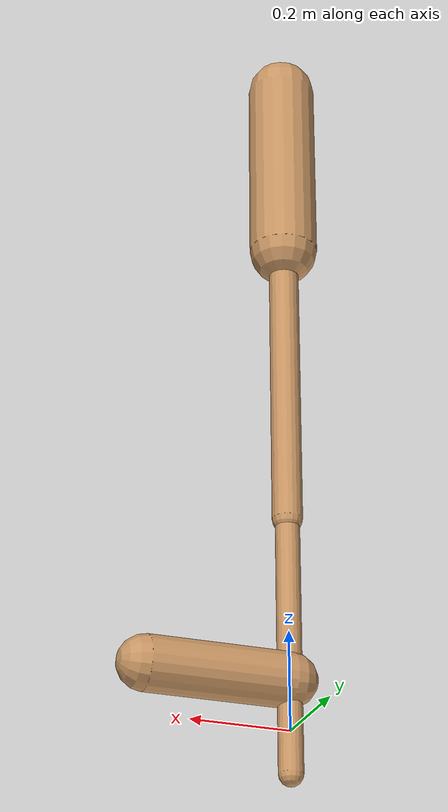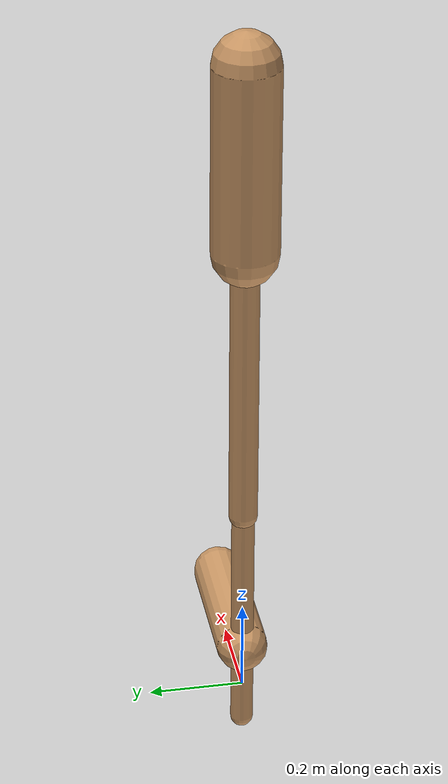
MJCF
<mujoco model="walker2d">
  <compiler angle="degree" coordinate="global" inertiafromgeom="true" />
  <default>
    <joint armature="0.01" damping=".1" limited="true" />
    <geom conaffinity="0" condim="3" contype="1" density="1000" friction="0.8 .1 .1" rgba="0.8 0.6 .4 1" />
  </default>
  <option integrator="RK4" timestep="0.002" />
  <worldbody>

    <body name="torso" pos="0 0 0.3491449550579092">
      <joint armature="0" axis="1 0 0" damping="0" limited="false" name="ignorex" pos="0 0 0" stiffness="0" type="slide" />
      <joint armature="0" axis="0 0 1" damping="0" limited="false" name="ignorez" pos="0 0 0" ref="1.25" stiffness="0" type="slide" />
      <joint armature="0" axis="0 1 0" damping="0" limited="false" name="ignorey" pos="0 0 0" stiffness="0" type="hinge" />
      <geom fromto="0 0 1.45 0 0 1.05" name="torso_geom" size="0.07034294448913599" type="capsule" />
      <body name="thigh">
        <joint axis="0 -1 0" name="thigh_joint" pos="0 0 1.05" range="-150 0" type="hinge" />
        <geom fromto="0.0 0.0 1.05 0.0 0.0 0.4346155476041482" name="thigh_geom" size="0.0304601008961938" type="capsule" />
        <body name="leg" pos="0.0 0.0 -0.16538445239585176">
          <joint axis="0 -1 0" name="leg_joint" pos="0 0 0.6" range="-150 0" type="hinge" />
          <geom fromto="0.0 0.0 0.6 0.0 0.0 -0.08376050266205745" name="leg_geom" size="0.024368080716955037" type="capsule" />
          <body name="foot" pos="0.0 0.0 -0.18376050266205746">
            <joint axis="0 -1 0" name="foot_joint" pos="0 0 0.1" range="-45 45" type="hinge" />
            <geom fromto="-0.0 0.0 0.09999999999999998 0.28810929429257154 0.0 0.09999999999999998" name="foot_geom" size="0.054343983756862745" type="capsule" />
          </body>
        </body>
      </body>

      <body name="thigh_left">
        <joint axis="0 -1 0" name="thigh_left_joint" pos="0 0 1.05" range="-150 0" type="hinge" />
        <geom fromto="0.0 0.0 1.05 0.0 0.0 0.4346155476041482" name="thigh_left_geom" rgba=".7 .3 .6 1" size="0.0304601008961938" type="capsule" />
        <body name="leg_left" pos="0.0 0.0 -0.16538445239585176">
          <joint axis="0 -1 0" name="leg_left_joint" pos="0 0 0.6" range="-150 0" type="hinge" />
          <geom fromto="0.0 0.0 0.6 0.0 0.0 -0.08376050266205745" name="leg_left_geom" rgba=".7 .3 .6 1" size="0.024368080716955037" type="capsule" />
          <body name="foot_left" pos="0.0 0.0 -0.18376050266205746">
            <joint axis="0 -1 0" name="foot_left_joint" pos="0 0 0.1" range="-45 45" type="hinge" />
            <geom fromto="-0.0 0.0 0.09999999999999998 0.28810929429257154 0.0 0.09999999999999998" name="foot_left_geom" rgba=".7 .3 .6 1" size="0.054343983756862745" type="capsule" />
          </body>
        </body>
      </body>
    </body>
  </worldbody>
  <actuator>

    <motor ctrllimited="true" ctrlrange="-1.0 1.0" gear="100" joint="thigh_joint" />
    <motor ctrllimited="true" ctrlrange="-1.0 1.0" gear="100" joint="leg_joint" />
    <motor ctrllimited="true" ctrlrange="-1.0 1.0" gear="100" joint="foot_joint" />
    <motor ctrllimited="true" ctrlrange="-1.0 1.0" gear="100" joint="thigh_left_joint" />
    <motor ctrllimited="true" ctrlrange="-1.0 1.0" gear="100" joint="leg_left_joint" />
    <motor ctrllimited="true" ctrlrange="-1.0 1.0" gear="100" joint="foot_left_joint" />

  </actuator>
</mujoco>
